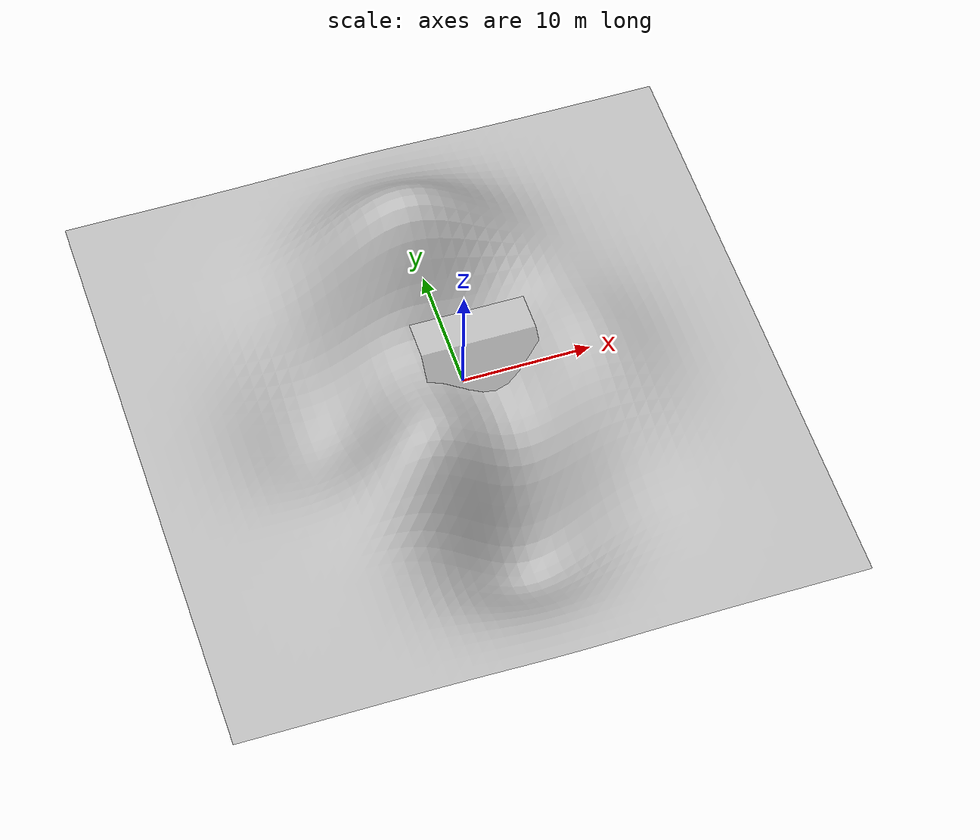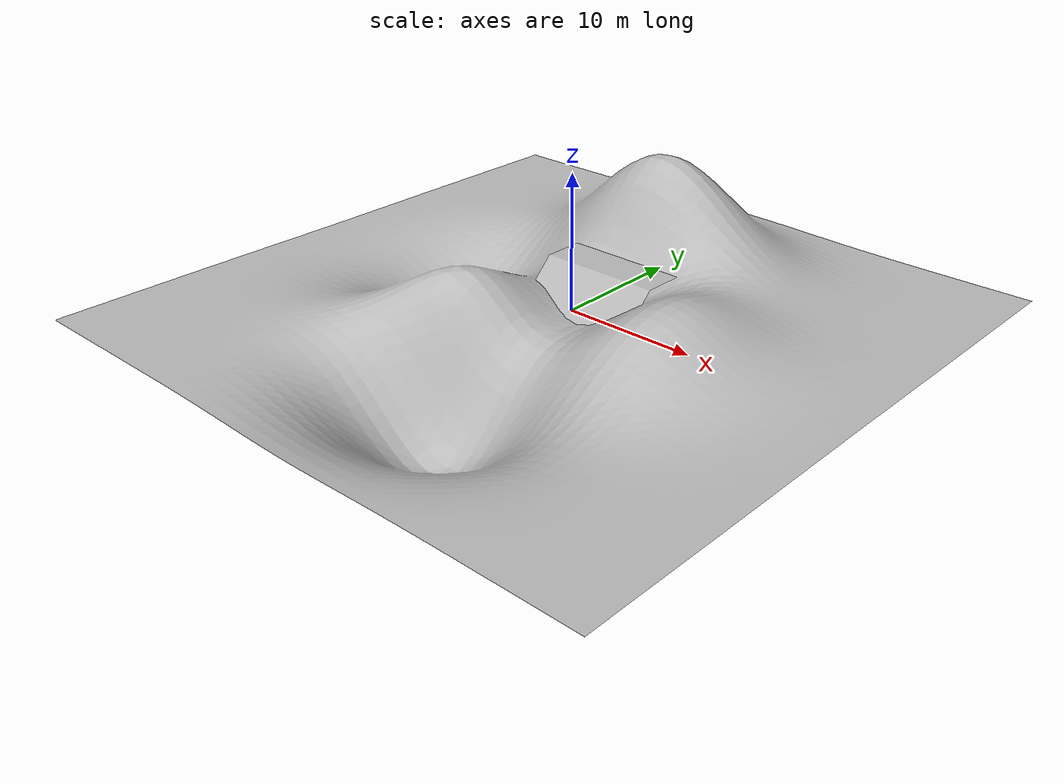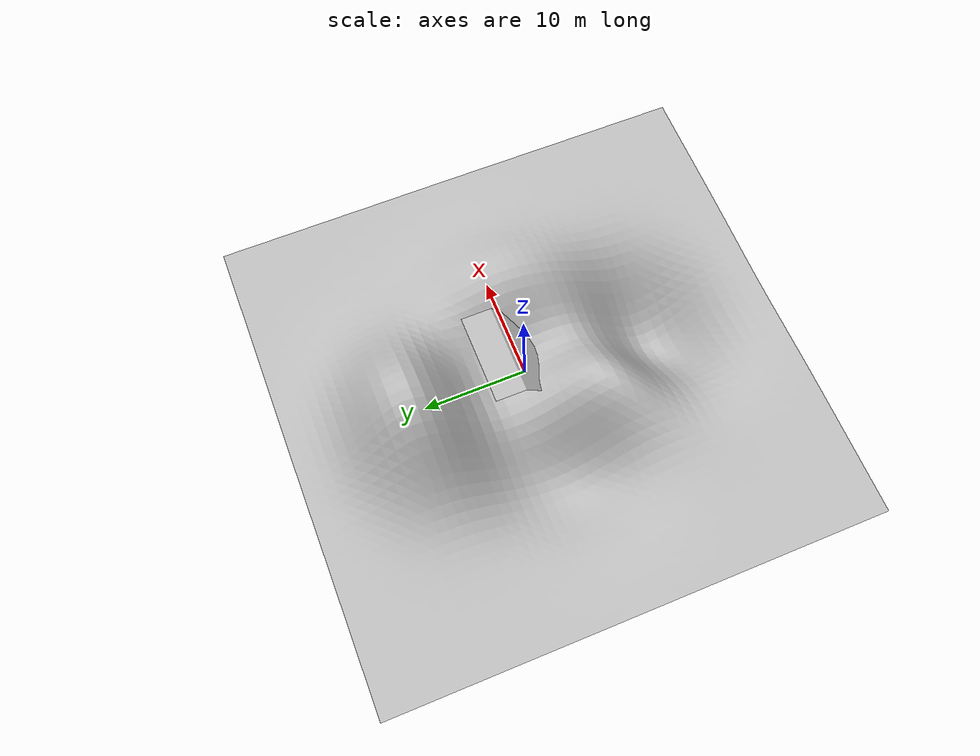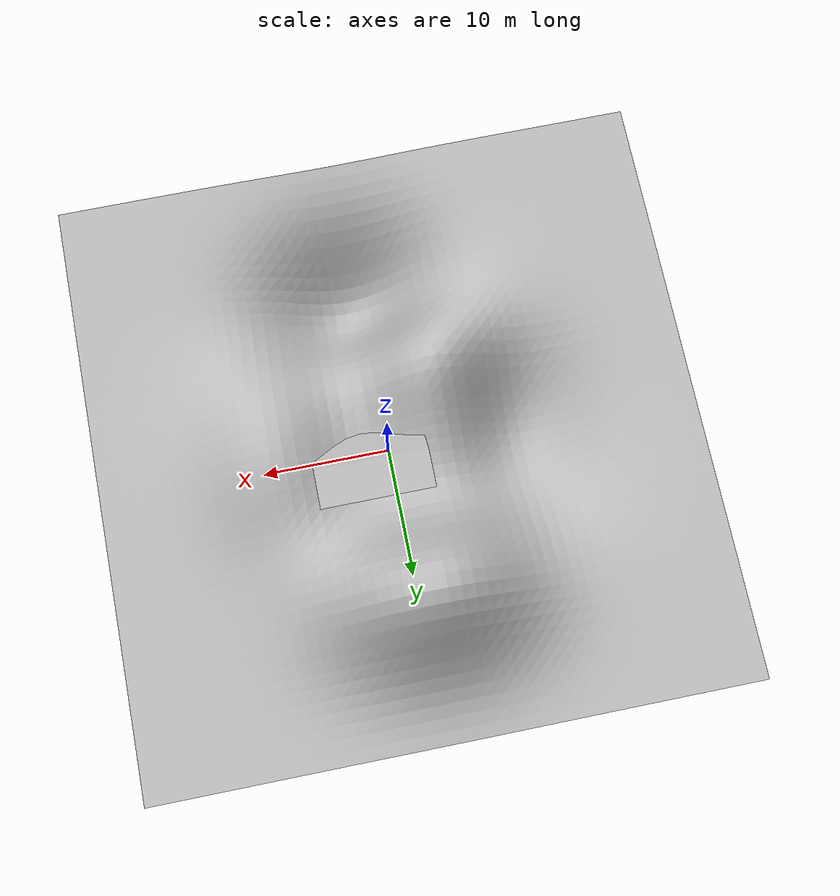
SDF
<?xml version="1.0" ?>
<sdf version="1.4">
  <world name="default">

    <!-- Global light source -->
    <include>
      <uri>model://sun</uri>
    </include>

    <include>
      <uri>model://test</uri>
    </include>

    <include>
      <uri>model://test1</uri>
    </include>
  </world>
</sdf>

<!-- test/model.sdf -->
<sdf version="1.4">
    <model name="test">
      <static>true</static>
      <pose>-3 -5 0 0 0 0</pose>
      <link name="link">
        <collision name="collision">
          <geometry>
            <mesh>
              <uri>model://test/meshes/test_stl.stl</uri>
              <scale>3 3 3</scale>
            </mesh>
          </geometry>
          <surface>
            <friction>
              <ode>
                <mu>0.001</mu>
                <mu2>0.01</mu2>
              </ode>
            </friction>
          </surface>
        </collision>
          <visual name="visual">
            <geometry>
              <mesh>
                <uri>model://test/meshes/test_stl.stl</uri>
                <scale>3 3 3</scale>
              </mesh>
            </geometry>
            <material>
            	<script>
          	    <uri>model://materials/scripts</uri>
          	    <uri>model://materials/textures</uri>
          	    <name>grass/floor</name>
              </script>
            </material>
          </visual>
      </link>
    </model>
</sdf>

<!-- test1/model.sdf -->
<sdf version="1.4">
    <model name="test1">
      <static>true</static>
      <pose>-25 -25 0 0 0 0</pose>
      <link name="link">
        <collision name="collision">
          <geometry>
            <mesh>
              <uri>model://test1/meshes/test_stl_2.stl</uri>
              <scale>1 1 1</scale>
            </mesh>
          </geometry>
          <surface>
            <friction>
              <ode>
                <mu>0.01</mu>
                <mu2>0.01</mu2>
              </ode>
            </friction>
          </surface>
        </collision>
          <visual name="visual">
            <geometry>
              <mesh>
                <uri>model://test1/meshes/test_stl_2.stl</uri>
                <scale>1 1 1</scale>
              </mesh>
            </geometry>
            <material>
            	<script>
          	    <uri>model://materials/scripts</uri>
          	    <uri>model://materials/textures</uri>
          	    <name>grass/floor</name>
              </script>
            </material>
          </visual>
      </link>
    </model>
</sdf>
